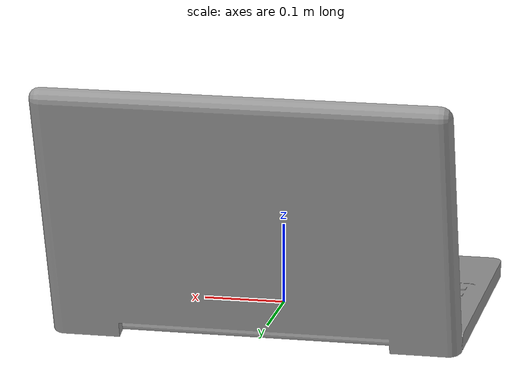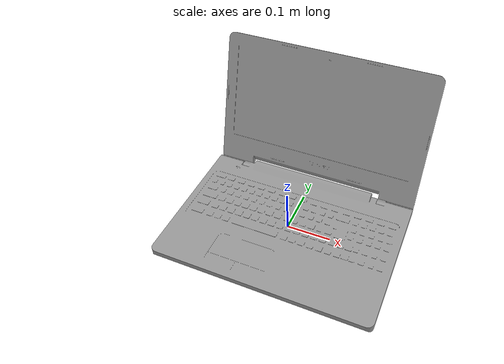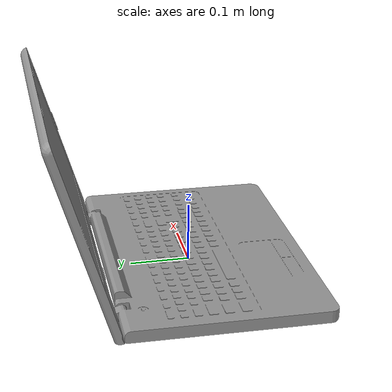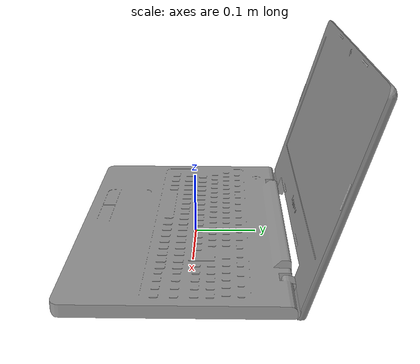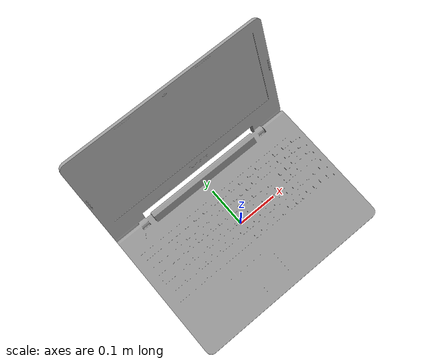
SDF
<?xml version='1.0'?>
<sdf version='1.6'>
  <model name='rai_laptop'>
    <link name='link_7'>
      <pose frame=''>0 0 0 0 -0 0</pose>
      <visual name='visual'>
        <pose frame=''>-0.04 0.48 0.025 1.57 -0 0</pose>
        <geometry>
          <mesh>
             <uri>model://rai_laptop/meshes/rai_laptop.STL</uri>
            <scale>1 1 1</scale>
          </mesh>
        </geometry>
        <material>
          <lighting>1</lighting>
          <script>
            <uri>file://media/materials/scripts/gazebo.material</uri>
            <name>Gazebo/Grey</name>
          </script>
          <ambient>0.2 0.2 0.2 0.5</ambient>
          <diffuse>0.7 0.7 0.7 0.5</diffuse>
          <specular>0.01 0.01 0.01 1</specular>
          <emissive>0 0 0 1</emissive>
          <shader type='vertex'>
            <normal_map>__default__</normal_map>
          </shader>
        </material>
        <cast_shadows>1</cast_shadows>
        <transparency>0</transparency>
      </visual>
      <collision name='collision'>
        <pose frame=''>-0 -0.01 0.01 0 -0 0</pose>
        <geometry>
          <box>
            <size>0.5 0.35 0.03</size>
          </box>
        </geometry>
      </collision>
    </link>
    <static>1</static>
    <allow_auto_disable>1</allow_auto_disable>
  </model>
</sdf>
